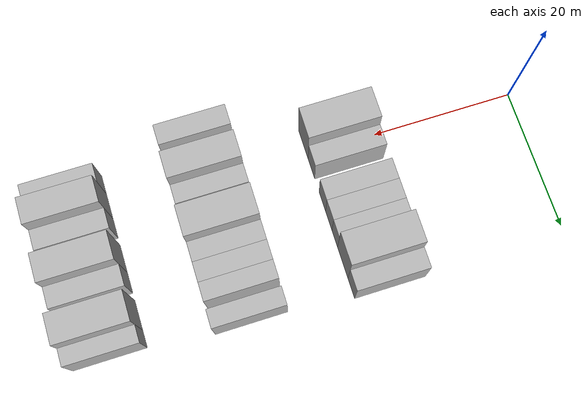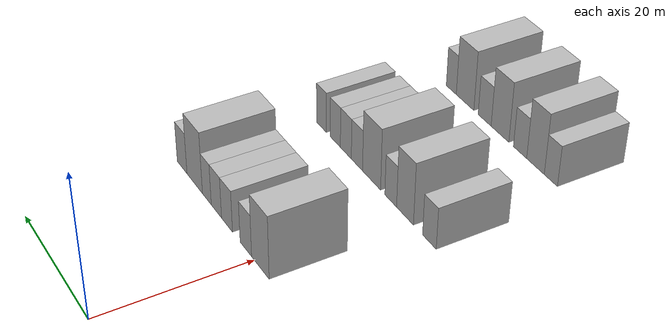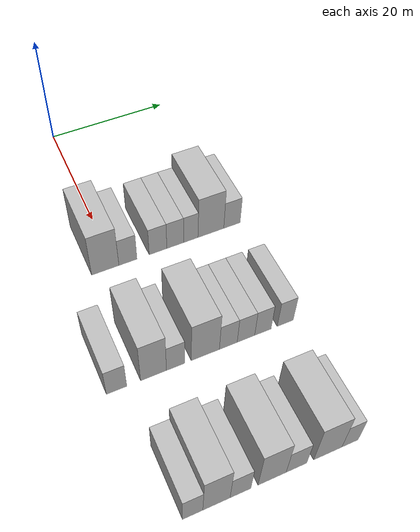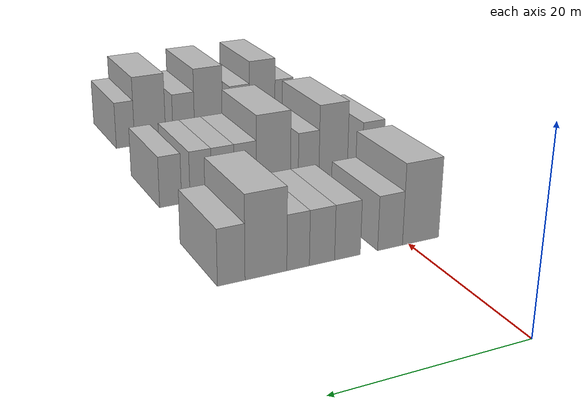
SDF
<sdf version="1.6">
 <world name="default">
  <model name="building_60">
   <static>1</static>
   <pose>25.0000 -1.4683 0 0.000000 0.000000 0.000000</pose>
   <link name="link">
    <pose>0 0 4.50 0 0 0</pose>
    <collision name="collision"><geometry><box><size>10.0000 4.3626 9.0000</size></box></geometry></collision>
    <visual name="visual">
     <cast_shadows>0</cast_shadows>
     <geometry><box><size>10.0000 4.3626 9.0000</size></box></geometry>
     <material>
      <script>
       <uri>model://HANNAS_wall/materials/scripts</uri>
       <uri>model://HANNAS_wall/materials/textures</uri>
       <name>vrc/HANNAS_wall</name>
      </script>
     </material>
    </visual>
   </link>
  </model>
  <model name="building_61">
   <static>1</static>
   <pose>25.0000 2.1740 0 0.000000 0.000000 0.000000</pose>
   <link name="link">
    <pose>0 0 3.00 0 0 0</pose>
    <collision name="collision"><geometry><box><size>10.0000 2.9219 6.0000</size></box></geometry></collision>
    <visual name="visual">
     <cast_shadows>0</cast_shadows>
     <geometry><box><size>10.0000 2.9219 6.0000</size></box></geometry>
     <material>
      <script>
       <uri>model://HANNAS_wall/materials/scripts</uri>
       <uri>model://HANNAS_wall/materials/textures</uri>
       <name>vrc/HANNAS_wall</name>
      </script>
     </material>
    </visual>
   </link>
  </model>
  <model name="building_62">
   <static>1</static>
   <pose>25.0000 7.0948 0 0.000000 0.000000 0.000000</pose>
   <link name="link">
    <pose>0 0 3.00 0 0 0</pose>
    <collision name="collision"><geometry><box><size>10.0000 2.9197 6.0000</size></box></geometry></collision>
    <visual name="visual">
     <cast_shadows>0</cast_shadows>
     <geometry><box><size>10.0000 2.9197 6.0000</size></box></geometry>
     <material>
      <script>
       <uri>model://HANNAS_wall/materials/scripts</uri>
       <uri>model://HANNAS_wall/materials/textures</uri>
       <name>vrc/HANNAS_wall</name>
      </script>
     </material>
    </visual>
   </link>
  </model>
  <model name="building_63">
   <static>1</static>
   <pose>25.0000 9.9556 0 0.000000 0.000000 0.000000</pose>
   <link name="link">
    <pose>0 0 3.00 0 0 0</pose>
    <collision name="collision"><geometry><box><size>10.0000 2.8018 6.0000</size></box></geometry></collision>
    <visual name="visual">
     <cast_shadows>0</cast_shadows>
     <geometry><box><size>10.0000 2.8018 6.0000</size></box></geometry>
     <material>
      <script>
       <uri>model://HANNAS_wall/materials/scripts</uri>
       <uri>model://HANNAS_wall/materials/textures</uri>
       <name>vrc/HANNAS_wall</name>
      </script>
     </material>
    </visual>
   </link>
  </model>
  <model name="building_64">
   <static>1</static>
   <pose>25.0000 12.5836 0 0.000000 0.000000 0.000000</pose>
   <link name="link">
    <pose>0 0 3.00 0 0 0</pose>
    <collision name="collision"><geometry><box><size>10.0000 2.4542 6.0000</size></box></geometry></collision>
    <visual name="visual">
     <cast_shadows>0</cast_shadows>
     <geometry><box><size>10.0000 2.4542 6.0000</size></box></geometry>
     <material>
      <script>
       <uri>model://HANNAS_wall/materials/scripts</uri>
       <uri>model://HANNAS_wall/materials/textures</uri>
       <name>vrc/HANNAS_wall</name>
      </script>
     </material>
    </visual>
   </link>
  </model>
  <model name="building_65">
   <static>1</static>
   <pose>25.0000 16.0316 0 0.000000 0.000000 0.000000</pose>
   <link name="link">
    <pose>0 0 4.50 0 0 0</pose>
    <collision name="collision"><geometry><box><size>10.0000 4.4417 9.0000</size></box></geometry></collision>
    <visual name="visual">
     <cast_shadows>0</cast_shadows>
     <geometry><box><size>10.0000 4.4417 9.0000</size></box></geometry>
     <material>
      <script>
       <uri>model://HANNAS_wall/materials/scripts</uri>
       <uri>model://HANNAS_wall/materials/textures</uri>
       <name>vrc/HANNAS_wall</name>
      </script>
     </material>
    </visual>
   </link>
  </model>
  <model name="building_66">
   <static>1</static>
   <pose>25.0000 19.6786 0 0.000000 0.000000 0.000000</pose>
   <link name="link">
    <pose>0 0 3.00 0 0 0</pose>
    <collision name="collision"><geometry><box><size>10.0000 2.8523 6.0000</size></box></geometry></collision>
    <visual name="visual">
     <cast_shadows>0</cast_shadows>
     <geometry><box><size>10.0000 2.8523 6.0000</size></box></geometry>
     <material>
      <script>
       <uri>model://HANNAS_wall/materials/scripts</uri>
       <uri>model://HANNAS_wall/materials/textures</uri>
       <name>vrc/HANNAS_wall</name>
      </script>
     </material>
    </visual>
   </link>
  </model>
  <model name="building_177">
   <static>1</static>
   <pose>44.0000 -6.8446 0 0.000000 0.000000 0.000000</pose>
   <link name="link">
    <pose>0 0 3.00 0 0 0</pose>
    <collision name="collision"><geometry><box><size>10.0000 2.9302 6.0000</size></box></geometry></collision>
    <visual name="visual">
     <cast_shadows>0</cast_shadows>
     <geometry><box><size>10.0000 2.9302 6.0000</size></box></geometry>
     <material>
      <script>
       <uri>model://HANNAS_wall/materials/scripts</uri>
       <uri>model://HANNAS_wall/materials/textures</uri>
       <name>vrc/HANNAS_wall</name>
      </script>
     </material>
    </visual>
   </link>
  </model>
  <model name="building_178">
   <static>1</static>
   <pose>44.0000 -1.4831 0 0.000000 0.000000 0.000000</pose>
   <link name="link">
    <pose>0 0 4.50 0 0 0</pose>
    <collision name="collision"><geometry><box><size>10.0000 3.7928 9.0000</size></box></geometry></collision>
    <visual name="visual">
     <cast_shadows>0</cast_shadows>
     <geometry><box><size>10.0000 3.7928 9.0000</size></box></geometry>
     <material>
      <script>
       <uri>model://HANNAS_wall/materials/scripts</uri>
       <uri>model://HANNAS_wall/materials/textures</uri>
       <name>vrc/HANNAS_wall</name>
      </script>
     </material>
    </visual>
   </link>
  </model>
  <model name="building_179">
   <static>1</static>
   <pose>44.0000 1.7631 0 0.000000 0.000000 0.000000</pose>
   <link name="link">
    <pose>0 0 3.00 0 0 0</pose>
    <collision name="collision"><geometry><box><size>10.0000 2.6995 6.0000</size></box></geometry></collision>
    <visual name="visual">
     <cast_shadows>0</cast_shadows>
     <geometry><box><size>10.0000 2.6995 6.0000</size></box></geometry>
     <material>
      <script>
       <uri>model://HANNAS_wall/materials/scripts</uri>
       <uri>model://HANNAS_wall/materials/textures</uri>
       <name>vrc/HANNAS_wall</name>
      </script>
     </material>
    </visual>
   </link>
  </model>
  <model name="building_180">
   <static>1</static>
   <pose>44.0000 6.2702 0 0.000000 0.000000 0.000000</pose>
   <link name="link">
    <pose>0 0 4.50 0 0 0</pose>
    <collision name="collision"><geometry><box><size>10.0000 4.3147 9.0000</size></box></geometry></collision>
    <visual name="visual">
     <cast_shadows>0</cast_shadows>
     <geometry><box><size>10.0000 4.3147 9.0000</size></box></geometry>
     <material>
      <script>
       <uri>model://HANNAS_wall/materials/scripts</uri>
       <uri>model://HANNAS_wall/materials/textures</uri>
       <name>vrc/HANNAS_wall</name>
      </script>
     </material>
    </visual>
   </link>
  </model>
  <model name="building_181">
   <static>1</static>
   <pose>44.0000 9.8084 0 0.000000 0.000000 0.000000</pose>
   <link name="link">
    <pose>0 0 3.00 0 0 0</pose>
    <collision name="collision"><geometry><box><size>10.0000 2.7618 6.0000</size></box></geometry></collision>
    <visual name="visual">
     <cast_shadows>0</cast_shadows>
     <geometry><box><size>10.0000 2.7618 6.0000</size></box></geometry>
     <material>
      <script>
       <uri>model://HANNAS_wall/materials/scripts</uri>
       <uri>model://HANNAS_wall/materials/textures</uri>
       <name>vrc/HANNAS_wall</name>
      </script>
     </material>
    </visual>
   </link>
  </model>
  <model name="building_182">
   <static>1</static>
   <pose>44.0000 12.5630 0 0.000000 0.000000 0.000000</pose>
   <link name="link">
    <pose>0 0 3.00 0 0 0</pose>
    <collision name="collision"><geometry><box><size>10.0000 2.7474 6.0000</size></box></geometry></collision>
    <visual name="visual">
     <cast_shadows>0</cast_shadows>
     <geometry><box><size>10.0000 2.7474 6.0000</size></box></geometry>
     <material>
      <script>
       <uri>model://HANNAS_wall/materials/scripts</uri>
       <uri>model://HANNAS_wall/materials/textures</uri>
       <name>vrc/HANNAS_wall</name>
      </script>
     </material>
    </visual>
   </link>
  </model>
  <model name="building_183">
   <static>1</static>
   <pose>44.0000 15.2393 0 0.000000 0.000000 0.000000</pose>
   <link name="link">
    <pose>0 0 3.00 0 0 0</pose>
    <collision name="collision"><geometry><box><size>10.0000 2.6052 6.0000</size></box></geometry></collision>
    <visual name="visual">
     <cast_shadows>0</cast_shadows>
     <geometry><box><size>10.0000 2.6052 6.0000</size></box></geometry>
     <material>
      <script>
       <uri>model://HANNAS_wall/materials/scripts</uri>
       <uri>model://HANNAS_wall/materials/textures</uri>
       <name>vrc/HANNAS_wall</name>
      </script>
     </material>
    </visual>
   </link>
  </model>
  <model name="building_184">
   <static>1</static>
   <pose>44.0000 18.8313 0 0.000000 0.000000 0.000000</pose>
   <link name="link">
    <pose>0 0 3.00 0 0 0</pose>
    <collision name="collision"><geometry><box><size>10.0000 2.5788 6.0000</size></box></geometry></collision>
    <visual name="visual">
     <cast_shadows>0</cast_shadows>
     <geometry><box><size>10.0000 2.5788 6.0000</size></box></geometry>
     <material>
      <script>
       <uri>model://HANNAS_wall/materials/scripts</uri>
       <uri>model://HANNAS_wall/materials/textures</uri>
       <name>vrc/HANNAS_wall</name>
      </script>
     </material>
    </visual>
   </link>
  </model>
  <model name="building_296">
   <static>1</static>
   <pose>63.0000 -4.2208 0 0.000000 0.000000 0.000000</pose>
   <link name="link">
    <pose>0 0 3.00 0 0 0</pose>
    <collision name="collision"><geometry><box><size>10.0000 2.6943 6.0000</size></box></geometry></collision>
    <visual name="visual">
     <cast_shadows>0</cast_shadows>
     <geometry><box><size>10.0000 2.6943 6.0000</size></box></geometry>
     <material>
      <script>
       <uri>model://HANNAS_wall/materials/scripts</uri>
       <uri>model://HANNAS_wall/materials/textures</uri>
       <name>vrc/HANNAS_wall</name>
      </script>
     </material>
    </visual>
   </link>
  </model>
  <model name="building_297">
   <static>1</static>
   <pose>63.0000 -1.0320 0 0.000000 0.000000 0.000000</pose>
   <link name="link">
    <pose>0 0 4.50 0 0 0</pose>
    <collision name="collision"><geometry><box><size>10.0000 3.6835 9.0000</size></box></geometry></collision>
    <visual name="visual">
     <cast_shadows>0</cast_shadows>
     <geometry><box><size>10.0000 3.6835 9.0000</size></box></geometry>
     <material>
      <script>
       <uri>model://HANNAS_wall/materials/scripts</uri>
       <uri>model://HANNAS_wall/materials/textures</uri>
       <name>vrc/HANNAS_wall</name>
      </script>
     </material>
    </visual>
   </link>
  </model>
  <model name="building_298">
   <static>1</static>
   <pose>63.0000 2.2329 0 0.000000 0.000000 0.000000</pose>
   <link name="link">
    <pose>0 0 3.00 0 0 0</pose>
    <collision name="collision"><geometry><box><size>10.0000 2.8462 6.0000</size></box></geometry></collision>
    <visual name="visual">
     <cast_shadows>0</cast_shadows>
     <geometry><box><size>10.0000 2.8462 6.0000</size></box></geometry>
     <material>
      <script>
       <uri>model://HANNAS_wall/materials/scripts</uri>
       <uri>model://HANNAS_wall/materials/textures</uri>
       <name>vrc/HANNAS_wall</name>
      </script>
     </material>
    </visual>
   </link>
  </model>
  <model name="building_299">
   <static>1</static>
   <pose>63.0000 6.6239 0 0.000000 0.000000 0.000000</pose>
   <link name="link">
    <pose>0 0 4.50 0 0 0</pose>
    <collision name="collision"><geometry><box><size>10.0000 3.9358 9.0000</size></box></geometry></collision>
    <visual name="visual">
     <cast_shadows>0</cast_shadows>
     <geometry><box><size>10.0000 3.9358 9.0000</size></box></geometry>
     <material>
      <script>
       <uri>model://HANNAS_wall/materials/scripts</uri>
       <uri>model://HANNAS_wall/materials/textures</uri>
       <name>vrc/HANNAS_wall</name>
      </script>
     </material>
    </visual>
   </link>
  </model>
  <model name="building_300">
   <static>1</static>
   <pose>63.0000 10.0700 0 0.000000 0.000000 0.000000</pose>
   <link name="link">
    <pose>0 0 3.00 0 0 0</pose>
    <collision name="collision"><geometry><box><size>10.0000 2.9564 6.0000</size></box></geometry></collision>
    <visual name="visual">
     <cast_shadows>0</cast_shadows>
     <geometry><box><size>10.0000 2.9564 6.0000</size></box></geometry>
     <material>
      <script>
       <uri>model://HANNAS_wall/materials/scripts</uri>
       <uri>model://HANNAS_wall/materials/textures</uri>
       <name>vrc/HANNAS_wall</name>
      </script>
     </material>
    </visual>
   </link>
  </model>
  <model name="building_301">
   <static>1</static>
   <pose>63.0000 14.6224 0 0.000000 0.000000 0.000000</pose>
   <link name="link">
    <pose>0 0 4.50 0 0 0</pose>
    <collision name="collision"><geometry><box><size>10.0000 4.1484 9.0000</size></box></geometry></collision>
    <visual name="visual">
     <cast_shadows>0</cast_shadows>
     <geometry><box><size>10.0000 4.1484 9.0000</size></box></geometry>
     <material>
      <script>
       <uri>model://HANNAS_wall/materials/scripts</uri>
       <uri>model://HANNAS_wall/materials/textures</uri>
       <name>vrc/HANNAS_wall</name>
      </script>
     </material>
    </visual>
   </link>
  </model>
  <model name="building_302">
   <static>1</static>
   <pose>63.0000 17.9023 0 0.000000 0.000000 0.000000</pose>
   <link name="link">
    <pose>0 0 3.00 0 0 0</pose>
    <collision name="collision"><geometry><box><size>10.0000 2.4115 6.0000</size></box></geometry></collision>
    <visual name="visual">
     <cast_shadows>0</cast_shadows>
     <geometry><box><size>10.0000 2.4115 6.0000</size></box></geometry>
     <material>
      <script>
       <uri>model://HANNAS_wall/materials/scripts</uri>
       <uri>model://HANNAS_wall/materials/textures</uri>
       <name>vrc/HANNAS_wall</name>
      </script>
     </material>
    </visual>
   </link>
  </model>
 </world>
</sdf>
